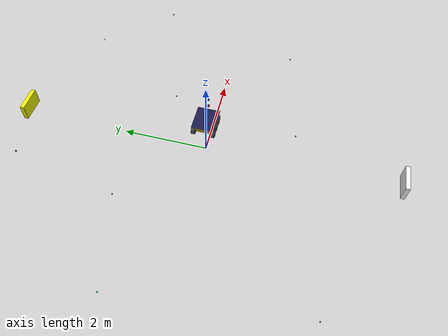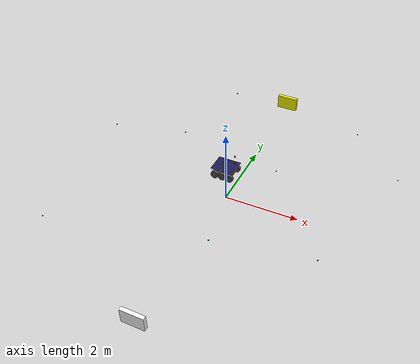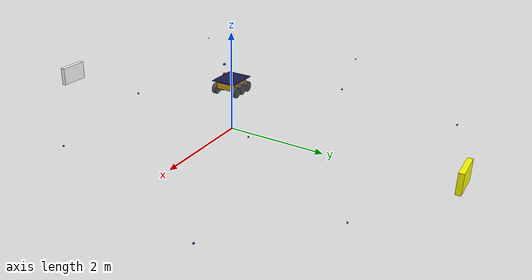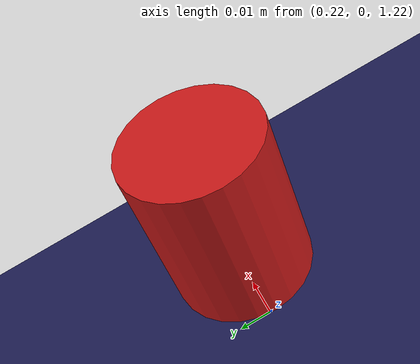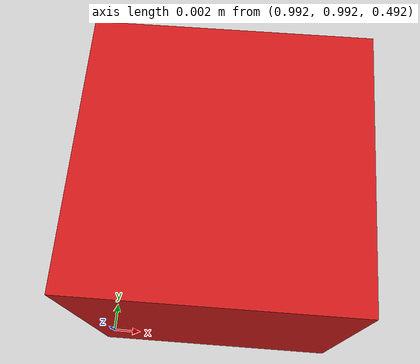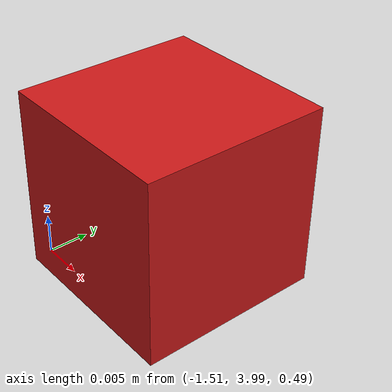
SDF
<sdf version="1.8">
 <world name="lunar_arena">
  <physics name="1ms" type="ignored">
   <max_step_size>0.001</max_step_size>
   <real_time_factor>1.0</real_time_factor>
  </physics>
  <plugin filename="gz-sim-physics-system" name="gz::sim::systems::Physics"/>
  <plugin filename="gz-sim-user-commands-system" name="gz::sim::systems::UserCommands"/>
  <plugin filename="gz-sim-scene-broadcaster-system" name="gz::sim::systems::SceneBroadcaster"/>
  <plugin filename="gz-sim-sensors-system" name="gz::sim::systems::Sensors">
   <render_engine>ogre</render_engine>
  </plugin>
  <plugin filename="gz-sim-imu-system" name="gz::sim::systems::Imu"/>
  <light type="directional" name="sun">
   <pose>0 0 10 0 0 0</pose>
   <diffuse>0.8 0.8 0.8 1</diffuse>
   <specular>0.2 0.2 0.2 1</specular>
   <direction>-0.5 0.1 -0.9</direction>
  </light>
  <model name="roca_roja_1">
   <pose>1.0 1.0 0.5 0 0 0</pose>
   <link name="link">
    <inertial><mass>0.03</mass><inertia><ixx>1e-6</ixx><iyy>1e-6</iyy><izz>1e-6</izz></inertia></inertial>
    <collision name="collision"><geometry><box><size>0.017 0.017 0.017</size></box></geometry></collision>
    <visual name="visual">
     <geometry><box><size>0.017 0.017 0.017</size></box></geometry>
     <material><ambient>0.8 0.1 0.1 1</ambient><diffuse>0.8 0.1 0.1 1</diffuse></material>
    </visual>
   </link>
  </model>
  <model name="roca_azul_1">
   <pose>-2.0 1.5 0.5 0 0 0</pose>
   <link name="link">
    <inertial><mass>0.04</mass><inertia><ixx>1e-6</ixx><iyy>1e-6</iyy><izz>1e-6</izz></inertia></inertial>
    <collision name="collision"><geometry><box><size>0.0215 0.0215 0.0215</size></box></geometry></collision>
    <visual name="visual">
     <geometry><box><size>0.0215 0.0215 0.0215</size></box></geometry>
     <material><ambient>0.1 0.1 0.8 1</ambient><diffuse>0.1 0.1 0.8 1</diffuse></material>
    </visual>
   </link>
  </model>
  <model name="roca_verde_1">
   <pose>0.5 -2.0 0.5 0 0 0</pose>
   <link name="link">
    <inertial><mass>0.05</mass><inertia><ixx>1e-6</ixx><iyy>1e-6</iyy><izz>1e-6</izz></inertia></inertial>
    <collision name="collision"><geometry><box><size>0.0228 0.0228 0.0228</size></box></geometry></collision>
    <visual name="visual">
     <geometry><box><size>0.0228 0.0228 0.0228</size></box></geometry>
     <material><ambient>0.1 0.8 0.1 1</ambient><diffuse>0.1 0.8 0.1 1</diffuse></material>
    </visual>
   </link>
  </model>
  <model name="roca_roja_2">
   <pose>3.0 -1.5 0.5 0 0 0</pose>
   <link name="link">
    <inertial><mass>0.035</mass><inertia><ixx>1e-6</ixx><iyy>1e-6</iyy><izz>1e-6</izz></inertia></inertial>
    <collision name="collision"><geometry><box><size>0.019 0.019 0.019</size></box></geometry></collision>
    <visual name="visual">
     <geometry><box><size>0.019 0.019 0.019</size></box></geometry>
     <material><ambient>0.8 0.1 0.1 1</ambient><diffuse>0.8 0.1 0.1 1</diffuse></material>
    </visual>
   </link>
  </model>
  <model name="roca_azul_2">
   <pose>-3.5 -3.0 0.5 0 0 0</pose>
   <link name="link">
    <inertial><mass>0.03</mass><inertia><ixx>1e-6</ixx><iyy>1e-6</iyy><izz>1e-6</izz></inertia></inertial>
    <collision name="collision"><geometry><box><size>0.017 0.017 0.017</size></box></geometry></collision>
    <visual name="visual">
     <geometry><box><size>0.017 0.017 0.017</size></box></geometry>
     <material><ambient>0.1 0.1 0.8 1</ambient><diffuse>0.1 0.1 0.8 1</diffuse></material>
    </visual>
   </link>
  </model>
  <model name="roca_verde_2">
   <pose>2.5 3.5 0.5 0 0 0</pose>
   <link name="link">
    <inertial><mass>0.035</mass><inertia><ixx>1e-6</ixx><iyy>1e-6</iyy><izz>1e-6</izz></inertia></inertial>
    <collision name="collision"><geometry><box><size>0.019 0.019 0.019</size></box></geometry></collision>
    <visual name="visual">
     <geometry><box><size>0.019 0.019 0.019</size></box></geometry>
     <material><ambient>0.1 0.8 0.1 1</ambient><diffuse>0.1 0.8 0.1 1</diffuse></material>
    </visual>
   </link>
  </model>
  <model name="roca_roja_3">
   <pose>-1.5 4.0 0.5 0 0 0</pose>
   <link name="link">
    <inertial><mass>0.05</mass><inertia><ixx>1e-6</ixx><iyy>1e-6</iyy><izz>1e-6</izz></inertia></inertial>
    <collision name="collision"><geometry><box><size>0.0228 0.0228 0.0228</size></box></geometry></collision>
    <visual name="visual">
     <geometry><box><size>0.0228 0.0228 0.0228</size></box></geometry>
     <material><ambient>0.8 0.1 0.1 1</ambient><diffuse>0.8 0.1 0.1 1</diffuse></material>
    </visual>
   </link>
  </model>
  <model name="roca_azul_3">
   <pose>4.0 2.0 0.5 0 0 0</pose>
   <link name="link">
    <inertial><mass>0.035</mass><inertia><ixx>1e-6</ixx><iyy>1e-6</iyy><izz>1e-6</izz></inertia></inertial>
    <collision name="collision"><geometry><box><size>0.019 0.019 0.019</size></box></geometry></collision>
    <visual name="visual">
     <geometry><box><size>0.019 0.019 0.019</size></box></geometry>
     <material><ambient>0.1 0.1 0.8 1</ambient><diffuse>0.1 0.1 0.8 1</diffuse></material>
    </visual>
   </link>
  </model>
  <model name="roca_verde_3">
   <pose>-4.0 1.0 0.5 0 0 0</pose>
   <link name="link">
    <inertial><mass>0.04</mass><inertia><ixx>1e-6</ixx><iyy>1e-6</iyy><izz>1e-6</izz></inertia></inertial>
    <collision name="collision"><geometry><box><size>0.0215 0.0215 0.0215</size></box></geometry></collision>
    <visual name="visual">
     <geometry><box><size>0.0215 0.0215 0.0215</size></box></geometry>
     <material><ambient>0.1 0.8 0.1 1</ambient><diffuse>0.1 0.8 0.1 1</diffuse></material>
    </visual>
   </link>
  </model>
  <model name="letrero_inicio">
   <pose>0.0 -4.5 0.3 0 0 0</pose>
   <static>true</static>
   <link name="link">
    <collision name="c"><geometry><box><size>0.6 0.1 0.4</size></box></geometry></collision>
    <visual name="v">
     <geometry><box><size>0.6 0.1 0.4</size></box></geometry>
     <material><ambient>1 1 1 1</ambient><diffuse>1 1 1 1</diffuse></material>
    </visual>
   </link>
  </model>
  <model name="letrero_fin">
   <pose>0.0 4.5 0.3 0 0 0</pose>
   <static>true</static>
   <link name="link">
    <collision name="c"><geometry><box><size>0.6 0.1 0.4</size></box></geometry></collision>
    <visual name="v">
     <geometry><box><size>0.6 0.1 0.4</size></box></geometry>
     <material><ambient>1 1 0 1</ambient><diffuse>1 1 0 1</diffuse></material>
    </visual>
   </link>
  </model>
  <model name="rover">
   <pose>0 0 1 0 0 0</pose>
   <link name="chassis">
    <inertial><mass>15.0</mass><inertia><ixx>0.5</ixx><iyy>0.5</iyy><izz>0.5</izz></inertia></inertial>
    <collision name="collision"><geometry><box><size>0.5 0.35 0.15</size></box></geometry></collision>
    <visual name="visual">
     <geometry><box><size>0.5 0.35 0.15</size></box></geometry>
     <material>
      <ambient>0.8 0.6 0.1 1</ambient>
      <diffuse>0.8 0.6 0.1 1</diffuse>
      <specular>0.6 0.6 0.3 1</specular>
     </material>
    </visual>
    <sensor name="mpu_6050" type="imu">
     <always_on>1</always_on>
     <update_rate>50</update_rate>
     <visualize>true</visualize>
     <topic>/imu</topic>
    </sensor>
    <visual name="solar_panel">
     <pose>0 0 0.08 0 0 0</pose>
     <geometry><box><size>0.6 0.5 0.01</size></box></geometry>
     <material><ambient>0.1 0.1 0.3 1</ambient><diffuse>0.1 0.1 0.3 1</diffuse></material>
    </visual>
   </link>
   <link name="camera_link">
    <pose>0.25 0 0.45 0 0 0</pose>
    <inertial><mass>0.05</mass><inertia><ixx>0.001</ixx><iyy>0.001</iyy><izz>0.001</izz></inertia></inertial>
    <visual name="visual">
     <geometry><box><size>0.03 0.03 0.03</size></box></geometry>
     <material><ambient>0.1 0.1 0.1 1</ambient></material>
    </visual>
    <sensor name="ov5647" type="camera">
     <always_on>true</always_on>
     <update_rate>30</update_rate>
     <camera>
      <horizontal_fov>0.933</horizontal_fov>
      <image><width>640</width><height>480</height></image>
      <clip><near>0.1</near><far>100</far></clip>
     </camera>
     <topic>/camera/image_raw</topic>
    </sensor>
   </link>
   <joint name="camera_tilt_joint" type="revolute">
    <parent>chassis</parent>
    <child>camera_link</child>
    <axis><xyz>0 1 0</xyz><limit><lower>-0.8</lower><upper>0.5</upper></limit></axis>
   </joint>
   <plugin filename="gz-sim-joint-position-controller-system" name="gz::sim::systems::JointPositionController">
    <joint_name>camera_tilt_joint</joint_name>
    <p_gain>2.0</p_gain>
    <i_gain>0.1</i_gain>
    <d_gain>0.01</d_gain>
    <topic>/camera_tilt/cmd_pos</topic>
   </plugin>
   <link name="lidar_head">
    <pose>0.25 0 0.25 0 0.6108 0</pose>
    <inertial><mass>0.1</mass><inertia><ixx>0.001</ixx><iyy>0.001</iyy><izz>0.001</izz></inertia></inertial>
    <visual name="visual">
     <geometry><cylinder><radius>0.02</radius><length>0.05</length></cylinder></geometry>
     <material><ambient>0.8 0.1 0.1 1</ambient></material>
    </visual>
    <sensor name="tf_luna" type="gpu_lidar">
     <always_on>true</always_on>
     <update_rate>20</update_rate>
     <visualize>true</visualize>
     <ray>
      <scan>
       <horizontal>
        <samples>3</samples>
        <resolution>1</resolution>
        <min_angle>-0.02</min_angle>
        <max_angle>0.02</max_angle>
       </horizontal>
      </scan>
      <range><min>0.05</min><max>8.0</max><resolution>0.01</resolution></range>
     </ray>
     <topic>/tf_luna/scan</topic>
    </sensor>
   </link>
   <joint name="lidar_fixed_joint" type="fixed"><parent>chassis</parent><child>lidar_head</child></joint>
   <link name="w_fl">
    <pose>0.2 0.22 -0.1 -1.5708 0 0</pose>
    <inertial><mass>1.0</mass><inertia><ixx>0.01</ixx><iyy>0.01</iyy><izz>0.01</izz></inertia></inertial>
    <collision name="c">
     <geometry><cylinder><radius>0.1</radius><length>0.08</length></cylinder></geometry>
    </collision>
    <visual name="v">
     <geometry><cylinder><radius>0.1</radius><length>0.08</length></cylinder></geometry>
     <material><ambient>0.3 0.3 0.3 1</ambient></material>
    </visual>
   </link>
   <joint name="j_fl" type="revolute">
    <parent>chassis</parent>
    <child>w_fl</child>
    <axis><xyz>0 0 1</xyz></axis>
   </joint>
   <link name="w_fr">
    <pose>0.2 -0.22 -0.1 -1.5708 0 0</pose>
    <inertial><mass>1.0</mass><inertia><ixx>0.01</ixx><iyy>0.01</iyy><izz>0.01</izz></inertia></inertial>
    <collision name="c">
     <geometry><cylinder><radius>0.1</radius><length>0.08</length></cylinder></geometry>
    </collision>
    <visual name="v">
     <geometry><cylinder><radius>0.1</radius><length>0.08</length></cylinder></geometry>
     <material><ambient>0.3 0.3 0.3 1</ambient></material>
    </visual>
   </link>
   <joint name="j_fr" type="revolute">
    <parent>chassis</parent>
    <child>w_fr</child>
    <axis><xyz>0 0 1</xyz></axis>
   </joint>
   <link name="w_ml">
    <pose>0.0 0.22 -0.1 -1.5708 0 0</pose>
    <inertial><mass>1.0</mass><inertia><ixx>0.01</ixx><iyy>0.01</iyy><izz>0.01</izz></inertia></inertial>
    <collision name="c">
     <geometry><cylinder><radius>0.1</radius><length>0.08</length></cylinder></geometry>
    </collision>
    <visual name="v">
     <geometry><cylinder><radius>0.1</radius><length>0.08</length></cylinder></geometry>
     <material><ambient>0.3 0.3 0.3 1</ambient></material>
    </visual>
   </link>
   <joint name="j_ml" type="revolute">
    <parent>chassis</parent>
    <child>w_ml</child>
    <axis><xyz>0 0 1</xyz></axis>
   </joint>
   <link name="w_mr">
    <pose>0.0 -0.22 -0.1 -1.5708 0 0</pose>
    <inertial><mass>1.0</mass><inertia><ixx>0.01</ixx><iyy>0.01</iyy><izz>0.01</izz></inertia></inertial>
    <collision name="c">
     <geometry><cylinder><radius>0.1</radius><length>0.08</length></cylinder></geometry>
    </collision>
    <visual name="v">
     <geometry><cylinder><radius>0.1</radius><length>0.08</length></cylinder></geometry>
     <material><ambient>0.3 0.3 0.3 1</ambient></material>
    </visual>
   </link>
   <joint name="j_mr" type="revolute">
    <parent>chassis</parent>
    <child>w_mr</child>
    <axis><xyz>0 0 1</xyz></axis>
   </joint>
   <link name="w_bl">
    <pose>-0.2 0.22 -0.1 -1.5708 0 0</pose>
    <inertial><mass>1.0</mass><inertia><ixx>0.01</ixx><iyy>0.01</iyy><izz>0.01</izz></inertia></inertial>
    <collision name="c">
     <geometry><cylinder><radius>0.1</radius><length>0.08</length></cylinder></geometry>
    </collision>
    <visual name="v">
     <geometry><cylinder><radius>0.1</radius><length>0.08</length></cylinder></geometry>
     <material><ambient>0.3 0.3 0.3 1</ambient></material>
    </visual>
   </link>
   <joint name="j_bl" type="revolute">
    <parent>chassis</parent>
    <child>w_bl</child>
    <axis><xyz>0 0 1</xyz></axis>
   </joint>
   <link name="w_br">
    <pose>-0.2 -0.22 -0.1 -1.5708 0 0</pose>
    <inertial><mass>1.0</mass><inertia><ixx>0.01</ixx><iyy>0.01</iyy><izz>0.01</izz></inertia></inertial>
    <collision name="c">
     <geometry><cylinder><radius>0.1</radius><length>0.08</length></cylinder></geometry>
    </collision>
    <visual name="v">
     <geometry><cylinder><radius>0.1</radius><length>0.08</length></cylinder></geometry>
     <material><ambient>0.3 0.3 0.3 1</ambient></material>
    </visual>
   </link>
   <joint name="j_br" type="revolute">
    <parent>chassis</parent>
    <child>w_br</child>
    <axis><xyz>0 0 1</xyz></axis>
   </joint>
   <plugin filename="gz-sim-diff-drive-system" name="gz::sim::systems::DiffDrive">
    <left_joint>j_fl</left_joint>
    <left_joint>j_ml</left_joint>
    <left_joint>j_bl</left_joint>
    <right_joint>j_fr</right_joint>
    <right_joint>j_mr</right_joint>
    <right_joint>j_br</right_joint>
    <wheel_separation>0.44</wheel_separation>
    <wheel_radius>0.1</wheel_radius>
    <odom_publish_frequency>30</odom_publish_frequency>
    <topic>/cmd_vel</topic>
    <odom_topic>/odom</odom_topic>
    <frame_id>odom</frame_id>
    <child_frame_id>chassis</child_frame_id>
   </plugin>
  </model>
 </world>
</sdf>
